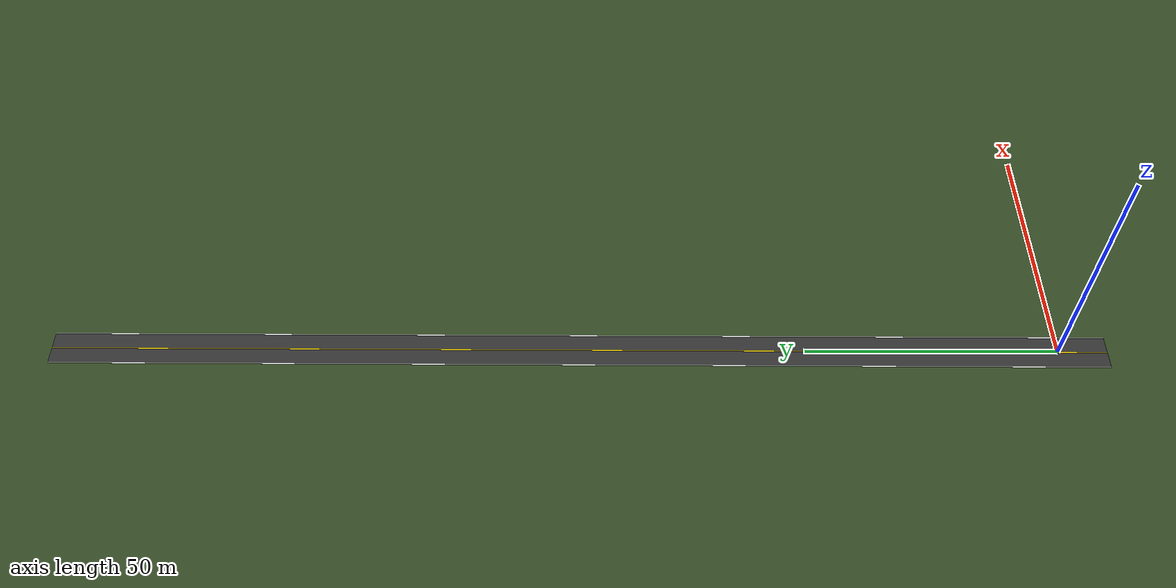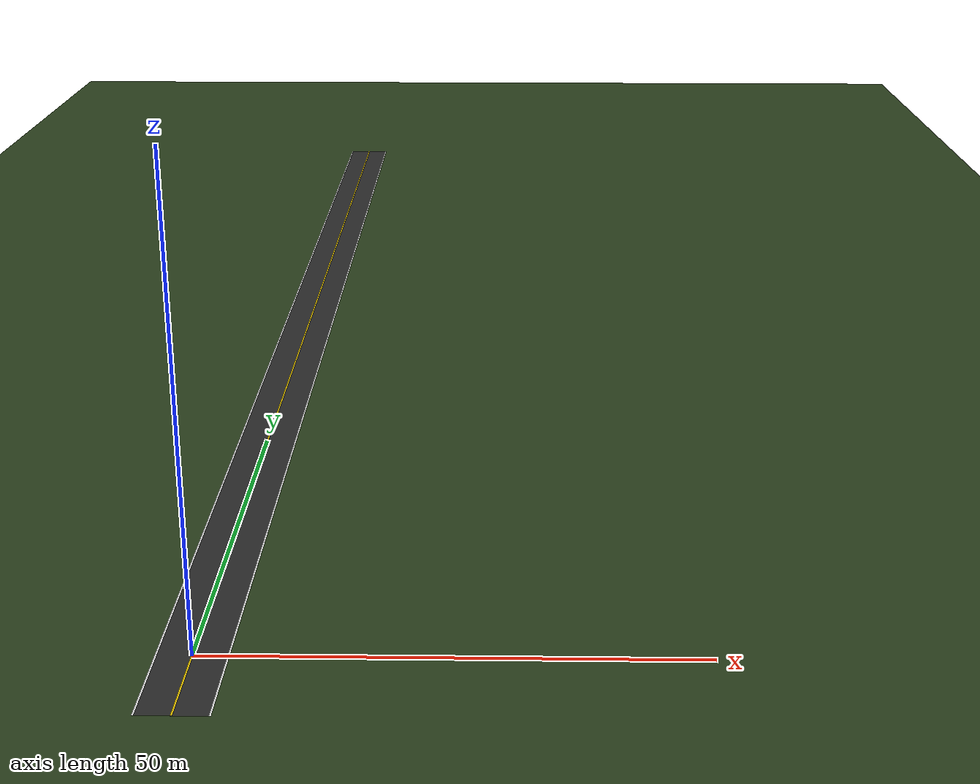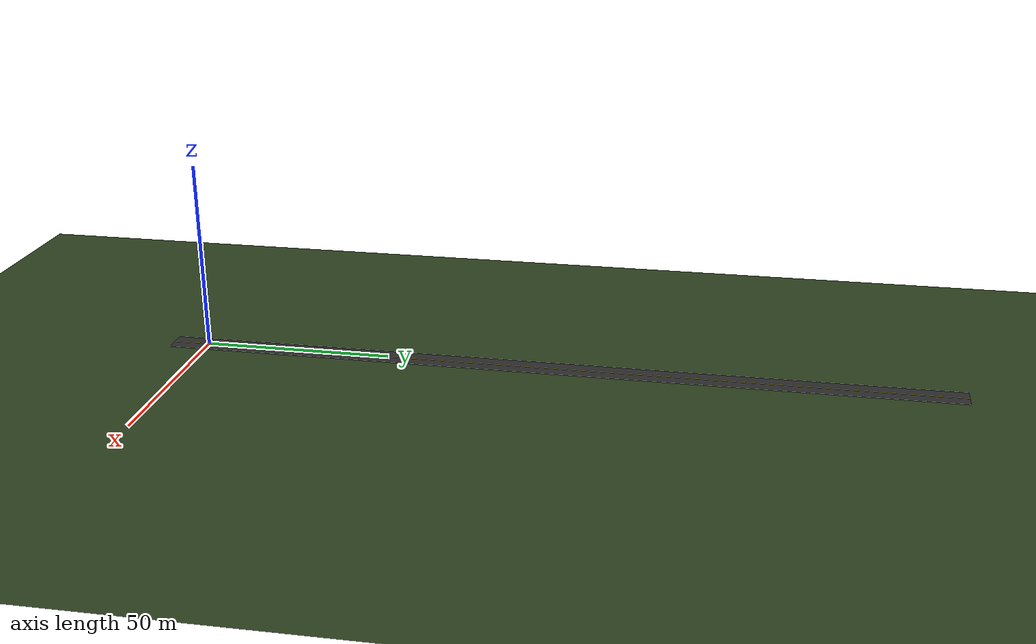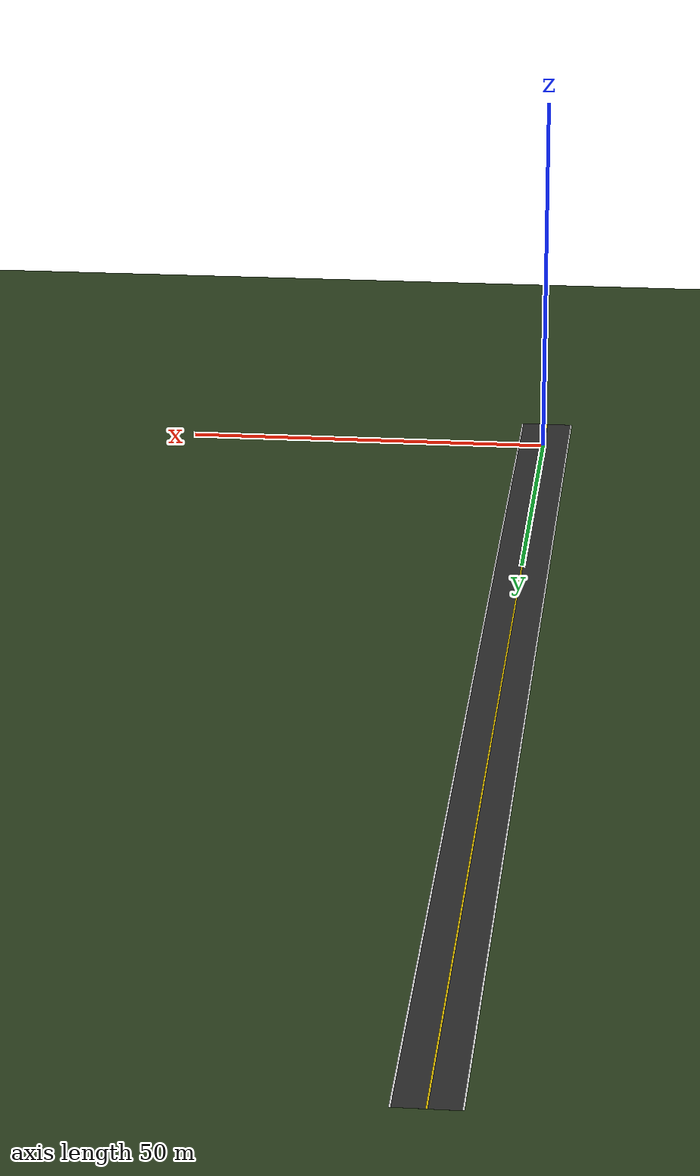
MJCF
<mujoco>

  <!-- CCR: 2 cars same lane (x=1.75), same direction (north).
       Ego at y=0; GVT at y=28 (≈ 5 s × 20 km/h headway).
       GVT faces NORTH — Ego rear-ends it. -->
  <statistic center="1.75 50 0" extent="80" meansize="1.0"/>

  <visual>
    <headlight diffuse="0.6 0.6 0.6" ambient="0.3 0.3 0.3" specular="0 0 0"/>
    <rgba haze="0.15 0.25 0.35 1"/>
    <global azimuth="-20" elevation="-20" ellipsoidinertia="true"/>
  </visual>

  <asset>
    <texture type="skybox" builtin="gradient" rgb1="0.3 0.5 0.7" rgb2="0 0 0"
             width="512" height="3072"/>
    <texture type="2d" name="groundplane" builtin="checker" mark="edge"
             rgb1="0.22 0.32 0.16" rgb2="0.18 0.26 0.12"
             markrgb="0.28 0.38 0.20" width="300" height="300"/>
    <material name="groundplane" texture="groundplane" texuniform="true"
              texrepeat="25 25" reflectance="0.05"/>
    <material name="road"           rgba="0.20 0.20 0.20 1"/>
    <material name="marking_white"  rgba="1.00 1.00 1.00 1"/>
    <material name="marking_yellow" rgba="1.00 0.85 0.00 1"/>
  </asset>

  <worldbody>
    <light pos="0 80 40" dir="0 0 -1" directional="true"
           diffuse="0.8 0.8 0.8" ambient="0.4 0.4 0.4"/>

    <!-- Floor: contype=3 so it collides with both Ego (type=1) and GVT (type=2) -->
    <geom name="floor" size="0 0 0.05" type="plane" material="groundplane"
          contype="3" conaffinity="3"/>

    <!-- Straight road, y=-10 to y=200 -->
    <geom name="road" type="box" pos="0 95 0.001" size="3.5 105 0.001"
          material="road" contype="0" conaffinity="0"/>

    <geom name="edge_east" type="box" pos=" 3.5 95 0.002" size="0.1 105 0.001"
          material="marking_white"  contype="0" conaffinity="0"/>
    <geom name="edge_west" type="box" pos="-3.5 95 0.002" size="0.1 105 0.001"
          material="marking_white"  contype="0" conaffinity="0"/>
    <geom name="centre_divider" type="box" pos="0 95 0.002" size="0.1 105 0.001"
          material="marking_yellow" contype="0" conaffinity="0"/>

    <!-- Ego: northbound right lane, heading north (follower) -->
    <frame name="spawn_ego" pos="1.75  0 0" euler="0 0 90"/>

    <!-- GVT: northbound right lane, heading north (leader) -->
    <frame name="spawn_gvt" pos="1.75 28 0" euler="0 0 90"/>

  </worldbody>

</mujoco>
